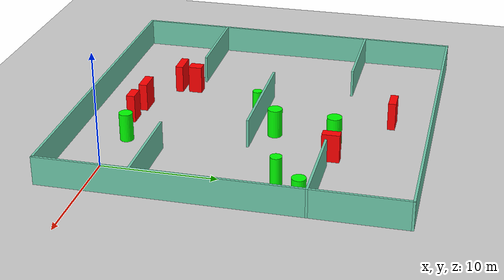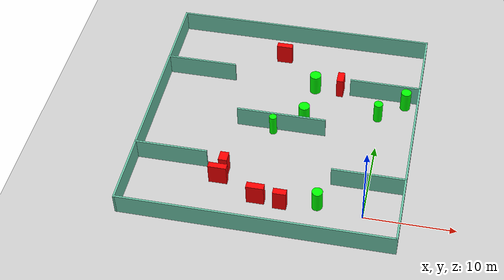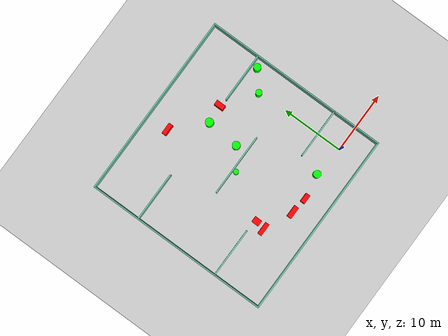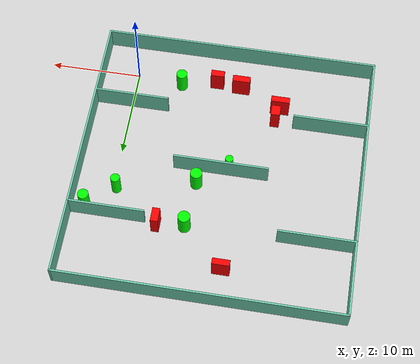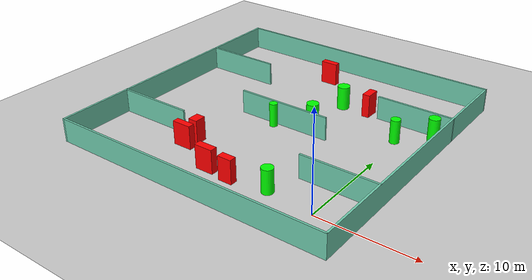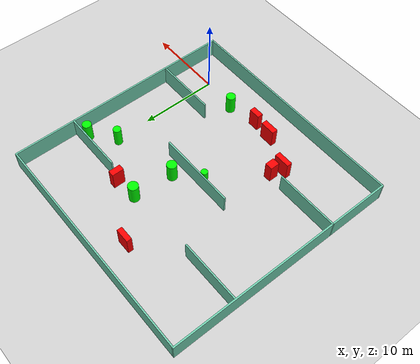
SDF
<sdf version="1.7">
 <world name="default">
  <light name="sun" type="directional">
   <pose>0 0 10 0 -0 0</pose>
   <diffuse>0.8 0.8 0.8 1</diffuse>
   <specular>0.2 0.2 0.2 1</specular>
   <attenuation>
    <range>1000</range>
    <constant>0.9</constant>
    <linear>0.01</linear>
    <quadratic>0.001</quadratic>
   </attenuation>
   <direction>-0.5 0.1 -0.9</direction>
   <spot><inner_angle>0</inner_angle><outer_angle>0</outer_angle><falloff>0</falloff></spot>
  </light>
  <model name="ground_plane">
   <static>1</static>
   <link name="link">
    <collision name="collision">
     <geometry><plane><normal>0 0 1</normal><size>100 100</size></plane></geometry>
     <surface>
      <contact><collide_bitmask>65535</collide_bitmask></contact>
      <friction><ode><mu>100</mu><mu2>50</mu2></ode></friction>
     </surface>
    </collision>
    <visual name="visual">
     <cast_shadows>0</cast_shadows>
     <geometry><plane><normal>0 0 1</normal><size>100 100</size></plane></geometry>
     <material>
      <script><uri>file://media/materials/scripts/gazebo.material</uri><name>Gazebo/Grey</name></script>
     </material>
    </visual>
   </link>
  </model>
  <gravity>0 0 -9.8</gravity>
  <magnetic_field>6e-06 2.3e-05 -4.2e-05</magnetic_field>
  <atmosphere type="adiabatic"/>
  <physics type="ode">
   <max_step_size>0.001</max_step_size>
   <real_time_factor>1</real_time_factor>
   <real_time_update_rate>1000</real_time_update_rate>
  </physics>
  <scene><ambient>0.4 0.4 0.4 1</ambient><background>0.7 0.7 0.7 1</background><shadows>1</shadows></scene>
  <spherical_coordinates>
   <surface_model>EARTH_WGS84</surface_model>
   <latitude_deg>0</latitude_deg>
   <longitude_deg>0</longitude_deg>
   <elevation>0</elevation>
   <heading_deg>0</heading_deg>
  </spherical_coordinates>
  <model name="my_base_walls">
   <link name="Wall_10">
    <collision name="Wall_10_Collision">
     <geometry><box><size>8.2 0.2 2.5</size></box></geometry>
     <pose>0 0 1.25 0 -0 0</pose>
    </collision>
    <visual name="Wall_10_Visual">
     <pose>0 0 1.25 0 -0 0</pose>
     <geometry><box><size>8.2 0.2 2.5</size></box></geometry>
     <material>
      <script><uri>file://media/materials/scripts/gazebo.material</uri><name>Gazebo/Grey</name></script>
      <ambient>0.435294 0.796078 0.67451 1</ambient>
     </material>
     <meta><layer>0</layer></meta>
    </visual>
    <pose>-11 -7 0 0 -0 0</pose>
   </link>
   <link name="Wall_12">
    <collision name="Wall_12_Collision">
     <geometry><box><size>8.2 0.2 2.5</size></box></geometry>
     <pose>0 0 1.25 0 -0 0</pose>
    </collision>
    <visual name="Wall_12_Visual">
     <pose>0 0 1.25 0 -0 0</pose>
     <geometry><box><size>8.2 0.2 2.5</size></box></geometry>
     <material>
      <script><uri>file://media/materials/scripts/gazebo.material</uri><name>Gazebo/Grey</name></script>
      <ambient>0.435294 0.796078 0.67451 1</ambient>
     </material>
     <meta><layer>0</layer></meta>
    </visual>
    <pose>-11 7 0 0 -0 0</pose>
   </link>
   <link name="Wall_14">
    <collision name="Wall_14_Collision">
     <geometry><box><size>8.2 0.2 2.5</size></box></geometry>
     <pose>0 0 1.25 0 -0 0</pose>
    </collision>
    <visual name="Wall_14_Visual">
     <pose>0 0 1.25 0 -0 0</pose>
     <geometry><box><size>8.2 0.2 2.5</size></box></geometry>
     <material>
      <script><uri>file://media/materials/scripts/gazebo.material</uri><name>Gazebo/Grey</name></script>
      <ambient>0.435294 0.796078 0.67451 1</ambient>
     </material>
     <meta><layer>0</layer></meta>
    </visual>
    <pose>11 7 0 0 -0 3.14159</pose>
   </link>
   <link name="Wall_16">
    <collision name="Wall_16_Collision">
     <geometry><box><size>10.2 0.2 2.5</size></box></geometry>
     <pose>0 0 1.25 0 -0 0</pose>
    </collision>
    <visual name="Wall_16_Visual">
     <pose>0 0 1.25 0 -0 0</pose>
     <geometry><box><size>10.2 0.2 2.5</size></box></geometry>
     <material>
      <script><uri>file://media/materials/scripts/gazebo.material</uri><name>Gazebo/Grey</name></script>
      <ambient>0.435294 0.796078 0.67451 1</ambient>
     </material>
     <meta><layer>0</layer></meta>
    </visual>
    <pose>0 0 0 0 -0 3.14159</pose>
   </link>
   <link name="Wall_2">
    <collision name="Wall_2_Collision">
     <geometry><box><size>30.2 0.2 2.5</size></box></geometry>
     <pose>0 0 1.25 0 -0 0</pose>
    </collision>
    <visual name="Wall_2_Visual">
     <pose>0 0 1.25 0 -0 0</pose>
     <geometry><box><size>30.2 0.2 2.5</size></box></geometry>
     <material>
      <script><uri>file://media/materials/scripts/gazebo.material</uri><name>Gazebo/Grey</name></script>
      <ambient>0.435294 0.796078 0.67451 1</ambient>
     </material>
     <meta><layer>0</layer></meta>
    </visual>
    <pose>0 -15 0 0 -0 3.14159</pose>
   </link>
   <link name="Wall_3">
    <collision name="Wall_3_Collision">
     <geometry><box><size>30.2 0.2 2.5</size></box></geometry>
     <pose>0 0 1.25 0 -0 0</pose>
    </collision>
    <visual name="Wall_3_Visual">
     <pose>0 0 1.25 0 -0 0</pose>
     <geometry><box><size>30.2 0.2 2.5</size></box></geometry>
     <material>
      <script><uri>file://media/materials/scripts/gazebo.material</uri><name>Gazebo/Grey</name></script>
      <ambient>0.435294 0.796078 0.67451 1</ambient>
     </material>
     <meta><layer>0</layer></meta>
    </visual>
    <pose>-15 0 0 0 -0 1.5708</pose>
   </link>
   <link name="Wall_4">
    <collision name="Wall_4_Collision">
     <geometry><box><size>30.2 0.2 2.5</size></box></geometry>
     <pose>0 0 1.25 0 -0 0</pose>
    </collision>
    <visual name="Wall_4_Visual">
     <pose>0 0 1.25 0 -0 0</pose>
     <geometry><box><size>30.2 0.2 2.5</size></box></geometry>
     <material>
      <script><uri>file://media/materials/scripts/gazebo.material</uri><name>Gazebo/Grey</name></script>
      <ambient>0.435294 0.796078 0.67451 1</ambient>
     </material>
     <meta><layer>0</layer></meta>
    </visual>
    <pose>0 15 0 0 -0 0</pose>
   </link>
   <link name="Wall_6">
    <collision name="Wall_6_Collision">
     <geometry><box><size>30.2 0.2 2.5</size></box></geometry>
     <pose>0 0 1.25 0 -0 0</pose>
    </collision>
    <visual name="Wall_6_Visual">
     <pose>0 0 1.25 0 -0 0</pose>
     <geometry><box><size>30.2 0.2 2.5</size></box></geometry>
     <material>
      <script><uri>file://media/materials/scripts/gazebo.material</uri><name>Gazebo/Grey</name></script>
      <ambient>0.435294 0.796078 0.67451 1</ambient>
     </material>
     <meta><layer>0</layer></meta>
    </visual>
    <pose>15 0 0 0 -0 1.5708</pose>
   </link>
   <link name="Wall_8">
    <collision name="Wall_8_Collision">
     <geometry><box><size>8.2 0.2 2.5</size></box></geometry>
     <pose>0 0 1.25 0 -0 0</pose>
    </collision>
    <visual name="Wall_8_Visual">
     <pose>0 0 1.25 0 -0 0</pose>
     <geometry><box><size>8.2 0.2 2.5</size></box></geometry>
     <material>
      <script><uri>file://media/materials/scripts/gazebo.material</uri><name>Gazebo/Grey</name></script>
      <ambient>0.435294 0.796078 0.67451 1</ambient>
     </material>
     <meta><layer>0</layer></meta>
    </visual>
    <pose>11 -7 0 0 -0 3.14159</pose>
   </link>
   <static>1</static>
   <pose>-11 11 0 0 -0 0</pose>
  </model>
  <model name="cylinder1">
   <static>1</static>
   <link name="link">
    <inertial>
     <mass>1</mass>
     <inertia><ixx>0.5</ixx><ixy>0</ixy><ixz>0</ixz><iyy>0.5</iyy><iyz>0</iyz><izz>1</izz></inertia>
    </inertial>
    <collision name="collision">
     <geometry><cylinder><radius>0.6329333630706975</radius><length>2.5</length></cylinder></geometry>
    </collision>
    <visual name="visual">
     <geometry><cylinder><radius>0.6329333630706975</radius><length>2.5</length></cylinder></geometry>
     <material>
      <ambient>0 1 0 1</ambient>
      <diffuse>0 1 0 1</diffuse>
      <specular>0.1 0.1 0.1 1</specular>
      <emissive>0 0 0 0</emissive>
     </material>
    </visual>
   </link>
   <pose>-8.657381085092915 12.763638134862356 1.25 0 0 0</pose>
  </model>
  <model name="cylinder2">
   <static>1</static>
   <link name="link">
    <inertial>
     <mass>1</mass>
     <inertia><ixx>0.5</ixx><ixy>0</ixy><ixz>0</ixz><iyy>0.5</iyy><iyz>0</iyz><izz>1</izz></inertia>
    </inertial>
    <collision name="collision">
     <geometry><cylinder><radius>0.6517853093070524</radius><length>2.5</length></cylinder></geometry>
    </collision>
    <visual name="visual">
     <geometry><cylinder><radius>0.6517853093070524</radius><length>2.5</length></cylinder></geometry>
     <material>
      <ambient>0 1 0 1</ambient>
      <diffuse>0 1 0 1</diffuse>
      <specular>0.1 0.1 0.1 1</specular>
      <emissive>0 0 0 0</emissive>
     </material>
    </visual>
   </link>
   <pose>-8.256757350162744 17.997811618958014 1.25 0 0 0</pose>
  </model>
  <model name="cylinder3">
   <static>1</static>
   <link name="link">
    <inertial>
     <mass>1</mass>
     <inertia><ixx>0.5</ixx><ixy>0</ixy><ixz>0</ixz><iyy>0.5</iyy><iyz>0</iyz><izz>1</izz></inertia>
    </inertial>
    <collision name="collision">
     <geometry><cylinder><radius>0.5809779934394574</radius><length>2.5</length></cylinder></geometry>
    </collision>
    <visual name="visual">
     <geometry><cylinder><radius>0.5809779934394574</radius><length>2.5</length></cylinder></geometry>
     <material>
      <ambient>0 1 0 1</ambient>
      <diffuse>0 1 0 1</diffuse>
      <specular>0.1 0.1 0.1 1</specular>
      <emissive>0 0 0 0</emissive>
     </material>
    </visual>
   </link>
   <pose>2.5474937288532047 17.098292672149213 1.25 0 0 0</pose>
  </model>
  <model name="cylinder4">
   <static>1</static>
   <link name="link">
    <inertial>
     <mass>1</mass>
     <inertia><ixx>0.5</ixx><ixy>0</ixy><ixz>0</ixz><iyy>0.5</iyy><iyz>0</iyz><izz>1</izz></inertia>
    </inertial>
    <collision name="collision">
     <geometry><cylinder><radius>0.5020783296011063</radius><length>2.5</length></cylinder></geometry>
    </collision>
    <visual name="visual">
     <geometry><cylinder><radius>0.5020783296011063</radius><length>2.5</length></cylinder></geometry>
     <material>
      <ambient>0 1 0 1</ambient>
      <diffuse>0 1 0 1</diffuse>
      <specular>0.1 0.1 0.1 1</specular>
      <emissive>0 0 0 0</emissive>
     </material>
    </visual>
   </link>
   <pose>-0.3660618543445757 14.679547612120494 1.25 0 0 0</pose>
  </model>
  <model name="cylinder5">
   <static>1</static>
   <link name="link">
    <inertial>
     <mass>1</mass>
     <inertia><ixx>0.5</ixx><ixy>0</ixy><ixz>0</ixz><iyy>0.5</iyy><iyz>0</iyz><izz>1</izz></inertia>
    </inertial>
    <collision name="collision">
     <geometry><cylinder><radius>0.421912703025727</radius><length>2.5</length></cylinder></geometry>
    </collision>
    <visual name="visual">
     <geometry><cylinder><radius>0.421912703025727</radius><length>2.5</length></cylinder></geometry>
     <material>
      <ambient>0 1 0 1</ambient>
      <diffuse>0 1 0 1</diffuse>
      <specular>0.1 0.1 0.1 1</specular>
      <emissive>0 0 0 0</emissive>
     </material>
    </visual>
   </link>
   <pose>-11.82701193797831 10.46785030158758 1.25 0 0 0</pose>
  </model>
  <model name="cylinder6">
   <static>1</static>
   <link name="link">
    <inertial>
     <mass>1</mass>
     <inertia><ixx>0.5</ixx><ixy>0</ixy><ixz>0</ixz><iyy>0.5</iyy><iyz>0</iyz><izz>1</izz></inertia>
    </inertial>
    <collision name="collision">
     <geometry><cylinder><radius>0.5938795547577607</radius><length>2.5</length></cylinder></geometry>
    </collision>
    <visual name="visual">
     <geometry><cylinder><radius>0.5938795547577607</radius><length>2.5</length></cylinder></geometry>
     <material>
      <ambient>0 1 0 1</ambient>
      <diffuse>0 1 0 1</diffuse>
      <specular>0.1 0.1 0.1 1</specular>
      <emissive>0 0 0 0</emissive>
     </material>
    </visual>
   </link>
   <pose>-5.01177669430832 0.572937002747675 1.25 0 0 0</pose>
  </model>
  <model name="box1">
   <static>1</static>
   <link name="link">
    <inertial>
     <mass>1</mass>
     <inertia><ixx>0.083</ixx><ixy>0</ixy><ixz>0</ixz><iyy>0.083</iyy><iyz>0</iyz><izz>0.083</izz></inertia>
    </inertial>
    <collision name="collision">
     <geometry><box><size>1.850887876891505 0.6638570140563401 2.5</size></box></geometry>
    </collision>
    <visual name="visual">
     <geometry><box><size>1.850887876891505 0.6638570140563401 2.5</size></box></geometry>
     <material>
      <ambient>1 0 0 1</ambient>
      <diffuse>1 0 0 1</diffuse>
      <specular>0.1 0.1 0.1 1</specular>
      <emissive>0 0 0 0</emissive>
     </material>
    </visual>
    <sensor name="my_contact" type="contact">
     <contact><collision>box_collision</collision><topic>__default_topic__</topic></contact>
    </sensor>
   </link>
   <pose>-12.771748177654283 22.410988215294644 1.25 0 0 0</pose>
  </model>
  <model name="box2">
   <static>1</static>
   <link name="link">
    <inertial>
     <mass>1</mass>
     <inertia><ixx>0.083</ixx><ixy>0</ixy><ixz>0</ixz><iyy>0.083</iyy><iyz>0</iyz><izz>0.083</izz></inertia>
    </inertial>
    <collision name="collision">
     <geometry><box><size>1.9462751676743864 0.7491057324660868 2.5</size></box></geometry>
    </collision>
    <visual name="visual">
     <geometry><box><size>1.9462751676743864 0.7491057324660868 2.5</size></box></geometry>
     <material>
      <ambient>1 0 0 1</ambient>
      <diffuse>1 0 0 1</diffuse>
      <specular>0.1 0.1 0.1 1</specular>
      <emissive>0 0 0 0</emissive>
     </material>
    </visual>
    <sensor name="my_contact" type="contact">
     <contact><collision>box_collision</collision><topic>__default_topic__</topic></contact>
    </sensor>
   </link>
   <pose>-11.650656555312764 0.15535467569627492 1.25 0 0 0</pose>
  </model>
  <model name="box3">
   <static>1</static>
   <link name="link">
    <inertial>
     <mass>1</mass>
     <inertia><ixx>0.083</ixx><ixy>0</ixy><ixz>0</ixz><iyy>0.083</iyy><iyz>0</iyz><izz>0.083</izz></inertia>
    </inertial>
    <collision name="collision">
     <geometry><box><size>0.9824130927947803 1.2069907599468945 2.5</size></box></geometry>
    </collision>
    <visual name="visual">
     <geometry><box><size>0.9824130927947803 1.2069907599468945 2.5</size></box></geometry>
     <material>
      <ambient>1 0 0 1</ambient>
      <diffuse>1 0 0 1</diffuse>
      <specular>0.1 0.1 0.1 1</specular>
      <emissive>0 0 0 0</emissive>
     </material>
    </visual>
    <sensor name="my_contact" type="contact">
     <contact><collision>box_collision</collision><topic>__default_topic__</topic></contact>
    </sensor>
   </link>
   <pose>-15.91784197458546 3.640161721840812 1.25 0 0 0</pose>
  </model>
  <model name="box4">
   <static>1</static>
   <link name="link">
    <inertial>
     <mass>1</mass>
     <inertia><ixx>0.083</ixx><ixy>0</ixy><ixz>0</ixz><iyy>0.083</iyy><iyz>0</iyz><izz>0.083</izz></inertia>
    </inertial>
    <collision name="collision">
     <geometry><box><size>0.8059805129806673 1.5275400714492513 2.5</size></box></geometry>
    </collision>
    <visual name="visual">
     <geometry><box><size>0.8059805129806673 1.5275400714492513 2.5</size></box></geometry>
     <material>
      <ambient>1 0 0 1</ambient>
      <diffuse>1 0 0 1</diffuse>
      <specular>0.1 0.1 0.1 1</specular>
      <emissive>0 0 0 0</emissive>
     </material>
    </visual>
    <sensor name="my_contact" type="contact">
     <contact><collision>box_collision</collision><topic>__default_topic__</topic></contact>
    </sensor>
   </link>
   <pose>-5.290244675730161 18.242532778787197 1.25 0 0 0</pose>
  </model>
  <model name="box5">
   <static>1</static>
   <link name="link">
    <inertial>
     <mass>1</mass>
     <inertia><ixx>0.083</ixx><ixy>0</ixy><ixz>0</ixz><iyy>0.083</iyy><iyz>0</iyz><izz>0.083</izz></inertia>
    </inertial>
    <collision name="collision">
     <geometry><box><size>2.046419212637127 0.6833069478905899 2.5</size></box></geometry>
    </collision>
    <visual name="visual">
     <geometry><box><size>2.046419212637127 0.6833069478905899 2.5</size></box></geometry>
     <material>
      <ambient>1 0 0 1</ambient>
      <diffuse>1 0 0 1</diffuse>
      <specular>0.1 0.1 0.1 1</specular>
      <emissive>0 0 0 0</emissive>
     </material>
    </visual>
    <sensor name="my_contact" type="contact">
     <contact><collision>box_collision</collision><topic>__default_topic__</topic></contact>
    </sensor>
   </link>
   <pose>-16.256390759148676 2.1708399954740987 1.25 0 0 0</pose>
  </model>
  <model name="box6">
   <static>1</static>
   <link name="link">
    <inertial>
     <mass>1</mass>
     <inertia><ixx>0.083</ixx><ixy>0</ixy><ixz>0</ixz><iyy>0.083</iyy><iyz>0</iyz><izz>0.083</izz></inertia>
    </inertial>
    <collision name="collision">
     <geometry><box><size>1.465263552226891 0.7426154417349883 2.5</size></box></geometry>
    </collision>
    <visual name="visual">
     <geometry><box><size>1.465263552226891 0.7426154417349883 2.5</size></box></geometry>
     <material>
      <ambient>1 0 0 1</ambient>
      <diffuse>1 0 0 1</diffuse>
      <specular>0.1 0.1 0.1 1</specular>
      <emissive>0 0 0 0</emissive>
     </material>
    </visual>
    <sensor name="my_contact" type="contact">
     <contact><collision>box_collision</collision><topic>__default_topic__</topic></contact>
    </sensor>
   </link>
   <pose>-8.944724822639321 -0.14409709467231036 1.25 0 0 0</pose>
  </model>
 </world>
</sdf>
